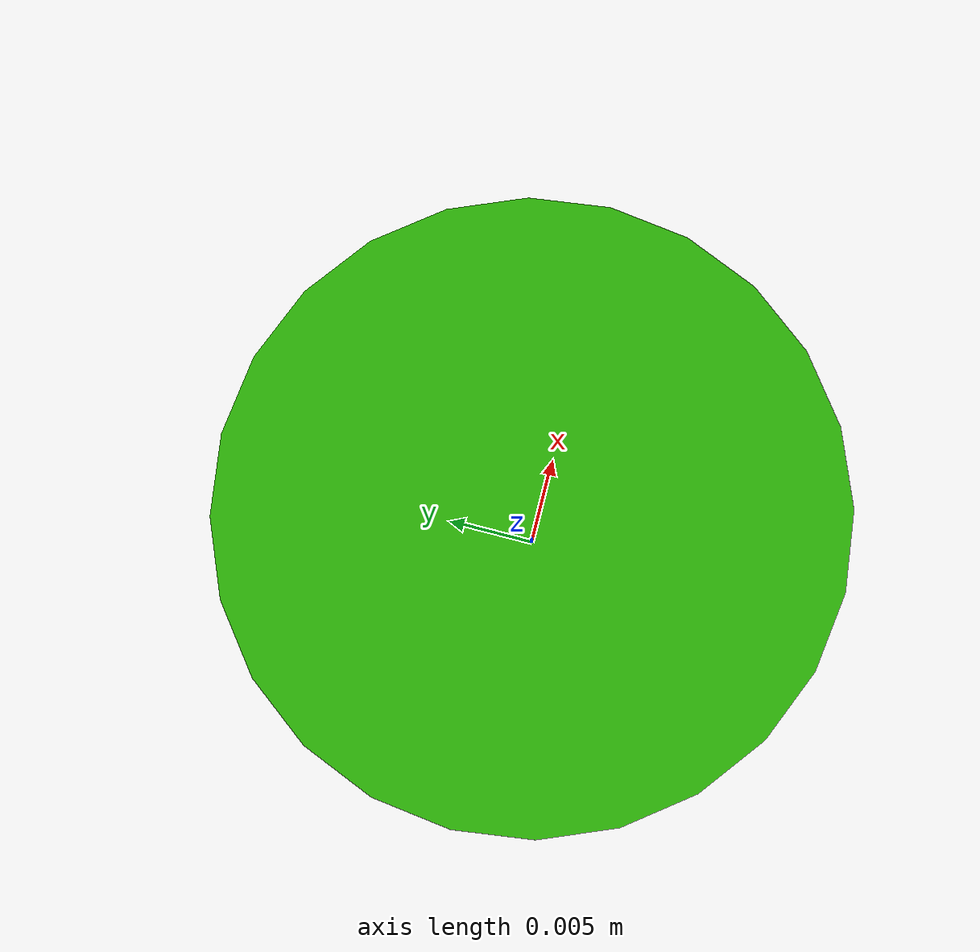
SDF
<sdf version="1.7">
  <model name="disc_14">
    <link name="base_link">
      <inertial>
        <mass>0.05</mass>
        <inertia>
          <ixx>7.91e-06</ixx>
          <ixy>0</ixy>
          <ixz>0</ixz>
          <iyy>7.91e-06</iyy>
          <iyz>0</iyz>
          <izz>1.56e-05</izz>
        </inertia>
        <pose>0 0 0.0025 0 0 0</pose>
      </inertial>
      <pose>0 0 0 0 0 0</pose>
      <visual name="visual">
        <pose>0 0 0.01 0 0 0</pose>
        <geometry>
            <cylinder>
              <radius>0.014</radius>
              <length>0.02</length>
            </cylinder>
        </geometry>
        <material>
          <diffuse>0.16380847918877695 0.6781368472483201 0.022185718171285007 1</diffuse>
        </material>
      </visual>
      <collision name="collision">
        <pose>0 0 0.01 0 0 0</pose>
        <geometry>
            <cylinder>
              <radius>0.014</radius>
              <length>0.02</length>
            </cylinder>
        </geometry>
      </collision>
      <collision name="ball1">
        <pose>0.009899494936611665 0.009899494936611665 0 0 0 0</pose>
        <geometry>
          <sphere>
            <radius>1e-07</radius>
          </sphere>
        </geometry>
      </collision>
      <collision name="ball2">
        <pose>-0.009899494936611665 0.009899494936611665 0 0 0 0</pose>
        <geometry>
          <sphere>
            <radius>1e-07</radius>
          </sphere>
        </geometry>
      </collision>
      <collision name="ball3">
        <pose>0.009899494936611665 -0.009899494936611665 0 0 0 0</pose>
        <geometry>
          <sphere>
            <radius>1e-07</radius>
          </sphere>
        </geometry>
      </collision>
      <collision name="ball4">
        <pose>-0.009899494936611665 -0.009899494936611665 0 0 0 0</pose>
        <geometry>
          <sphere>
            <radius>1e-07</radius>
          </sphere>
        </geometry>
      </collision>
    </link>
  </model>
</sdf>
